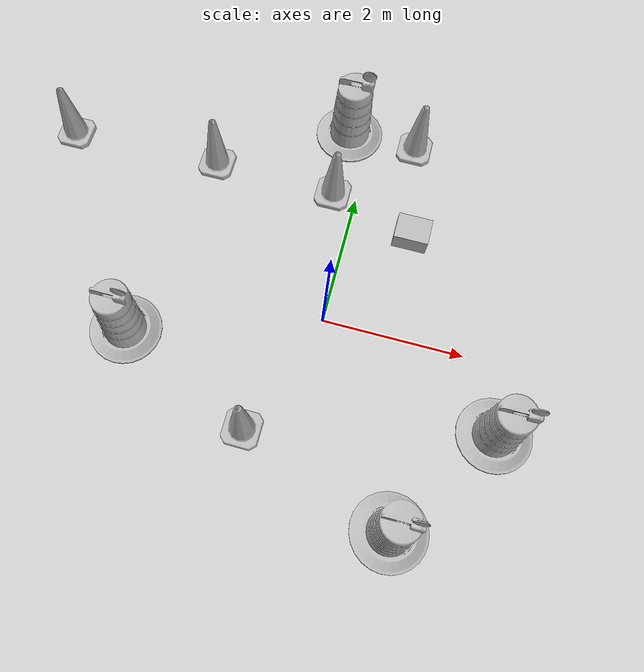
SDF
<sdf version="1.7">
 <world name="default">
  <light name="sun" type="directional">
   <pose>0 0 10 0 -0 0</pose>
   <diffuse>0.8 0.8 0.8 1</diffuse>
   <specular>0.2 0.2 0.2 1</specular>
   <attenuation>
    <range>1000</range>
    <constant>0.9</constant>
    <linear>0.01</linear>
    <quadratic>0.001</quadratic>
   </attenuation>
   <direction>-0.5 0.1 -0.9</direction>
   <spot><inner_angle>0</inner_angle><outer_angle>0</outer_angle><falloff>0</falloff></spot>
  </light>
  <model name="ground_plane">
   <static>1</static>
   <link name="link">
    <collision name="collision">
     <geometry><plane><normal>0 0 1</normal><size>100 100</size></plane></geometry>
     <surface>
      <contact><collide_bitmask>65535</collide_bitmask></contact>
      <friction><ode><mu>100</mu><mu2>50</mu2></ode></friction>
     </surface>
    </collision>
    <visual name="visual">
     <cast_shadows>0</cast_shadows>
     <geometry><plane><normal>0 0 1</normal><size>100 100</size></plane></geometry>
     <material>
      <script><uri>file://media/materials/scripts/gazebo.material</uri><name>Gazebo/Grey</name></script>
     </material>
    </visual>
   </link>
  </model>
  <gravity>0 0 -9.8</gravity>
  <magnetic_field>6e-06 2.3e-05 -4.2e-05</magnetic_field>
  <atmosphere type="adiabatic"/>
  <physics type="ode">
   <max_step_size>0.001</max_step_size>
   <real_time_factor>1</real_time_factor>
   <real_time_update_rate>1000</real_time_update_rate>
  </physics>
  <scene><ambient>0.4 0.4 0.4 1</ambient><background>0.7 0.7 0.7 1</background><shadows>1</shadows></scene>
  <audio><device>default</device></audio>
  <spherical_coordinates>
   <surface_model>EARTH_WGS84</surface_model>
   <latitude_deg>0</latitude_deg>
   <longitude_deg>0</longitude_deg>
   <elevation>0</elevation>
   <heading_deg>0</heading_deg>
  </spherical_coordinates>
  <model name="Construction Barrel">
   <link name="link">
    <inertial>
     <pose>0 0 0.4 0 -0 0</pose>
     <mass>500</mass>
     <inertia><ixx>51.2096</ixx><iyy>51.2096</iyy><izz>25</izz><ixy>0</ixy><ixz>0</ixz><iyz>0</iyz></inertia>
    </inertial>
    <collision name="collision">
     <geometry><mesh><uri>model://construction_barrel/meshes/construction_barrel.dae</uri></mesh></geometry>
    </collision>
    <visual name="visual">
     <geometry><mesh><uri>model://construction_barrel/meshes/construction_barrel.dae</uri></mesh></geometry>
    </visual>
   </link>
   <pose>1.51435 -2.55204 -1e-06 -1e-06 -0 -1.9e-05</pose>
  </model>
  <model name="Construction Barrel_0">
   <link name="link">
    <inertial>
     <pose>0 0 0.4 0 -0 0</pose>
     <mass>500</mass>
     <inertia><ixx>51.2096</ixx><iyy>51.2096</iyy><izz>25</izz><ixy>0</ixy><ixz>0</ixz><iyz>0</iyz></inertia>
    </inertial>
    <collision name="collision">
     <geometry><mesh><uri>model://construction_barrel/meshes/construction_barrel.dae</uri></mesh></geometry>
    </collision>
    <visual name="visual">
     <geometry><mesh><uri>model://construction_barrel/meshes/construction_barrel.dae</uri></mesh></geometry>
    </visual>
   </link>
   <pose>2.58983 -0.973853 -2e-06 4e-06 9e-06 -1.8e-05</pose>
  </model>
  <model name="Construction Cone">
   <link name="link">
    <collision name="collision">
     <geometry>
      <mesh><scale>10 10 10</scale><uri>model://construction_cone/meshes/construction_cone.dae</uri></mesh>
     </geometry>
    </collision>
    <visual name="visual">
     <geometry>
      <mesh><scale>10 10 10</scale><uri>model://construction_cone/meshes/construction_cone.dae</uri></mesh>
     </geometry>
    </visual>
    <inertial>
     <inertia><ixx>1</ixx><ixy>0</ixy><ixz>0</ixz><iyy>1</iyy><iyz>0</iyz><izz>1</izz></inertia>
     <mass>1</mass>
    </inertial>
   </link>
   <pose>-0.358393 2.02037 -0 0 -0 0</pose>
  </model>
  <model name="Construction Cone_0">
   <link name="link">
    <collision name="collision">
     <geometry>
      <mesh><scale>10 10 10</scale><uri>model://construction_cone/meshes/construction_cone.dae</uri></mesh>
     </geometry>
    </collision>
    <visual name="visual">
     <geometry>
      <mesh><scale>10 10 10</scale><uri>model://construction_cone/meshes/construction_cone.dae</uri></mesh>
     </geometry>
    </visual>
    <inertial>
     <inertia><ixx>1</ixx><ixy>0</ixy><ixz>0</ixz><iyy>1</iyy><iyz>0</iyz><izz>1</izz></inertia>
     <mass>1</mass>
    </inertial>
   </link>
   <pose>-2.1946 2.06843 -0 0 -0 0</pose>
  </model>
  <model name="Construction Barrel_1">
   <link name="link">
    <inertial>
     <pose>0 0 0.4 0 -0 0</pose>
     <mass>500</mass>
     <inertia><ixx>51.2096</ixx><iyy>51.2096</iyy><izz>25</izz><ixy>0</ixy><ixz>0</ixz><iyz>0</iyz></inertia>
    </inertial>
    <collision name="collision">
     <geometry><mesh><uri>model://construction_barrel/meshes/construction_barrel.dae</uri></mesh></geometry>
    </collision>
    <visual name="visual">
     <geometry><mesh><uri>model://construction_barrel/meshes/construction_barrel.dae</uri></mesh></geometry>
    </visual>
   </link>
   <pose>-2.62514 -0.861218 -1e-06 1e-06 -1e-06 -1.3e-05</pose>
  </model>
  <model name="cardboard_box">
   <pose>0.925264 1.61674 0.149 0 -0 0</pose>
   <link name="link">
    <inertial>
     <mass>2</mass>
     <inertia>
      <ixx>0.0416667</ixx>
      <ixy>0</ixy>
      <ixz>0</ixz>
      <iyy>0.0566667</iyy>
      <iyz>0</iyz>
      <izz>0.0683333</izz>
     </inertia>
    </inertial>
    <collision name="collision">
     <geometry><box><size>0.5 0.4 0.3</size></box></geometry>
     <surface>
      <friction><ode><mu>1</mu><mu2>1</mu2></ode></friction>
      <contact><ode><kp>1e+07</kp><kd>1</kd><min_depth>0.001</min_depth><max_vel>0.1</max_vel></ode></contact>
     </surface>
    </collision>
    <visual name="visual">
     <pose>0 0 -0.15 0 -0 0</pose>
     <geometry>
      <mesh><uri>model://cardboard_box/meshes/cardboard_box.dae</uri><scale>1.25932 1.00745 0.755591</scale></mesh>
     </geometry>
    </visual>
   </link>
  </model>
  <model name="Construction Barrel_2">
   <link name="link">
    <inertial>
     <pose>0 0 0.4 0 -0 0</pose>
     <mass>500</mass>
     <inertia><ixx>51.2096</ixx><iyy>51.2096</iyy><izz>25</izz><ixy>0</ixy><ixz>0</ixz><iyz>0</iyz></inertia>
    </inertial>
    <collision name="collision">
     <geometry><mesh><uri>model://construction_barrel/meshes/construction_barrel.dae</uri></mesh></geometry>
    </collision>
    <visual name="visual">
     <geometry><mesh><uri>model://construction_barrel/meshes/construction_barrel.dae</uri></mesh></geometry>
    </visual>
   </link>
   <pose>-0.368128 3.13832 -0 1e-06 -1e-06 -9e-06</pose>
  </model>
  <model name="Construction Cone_1">
   <link name="link">
    <collision name="collision">
     <geometry>
      <mesh><scale>10 10 10</scale><uri>model://construction_cone/meshes/construction_cone.dae</uri></mesh>
     </geometry>
    </collision>
    <visual name="visual">
     <geometry>
      <mesh><scale>10 10 10</scale><uri>model://construction_cone/meshes/construction_cone.dae</uri></mesh>
     </geometry>
    </visual>
    <inertial>
     <inertia><ixx>1</ixx><ixy>0</ixy><ixz>0</ixz><iyy>1</iyy><iyz>0</iyz><izz>1</izz></inertia>
     <mass>1</mass>
    </inertial>
   </link>
   <pose>0.670636 3.11693 -0 0 -0 0</pose>
  </model>
  <model name="Construction Cone_2">
   <link name="link">
    <collision name="collision">
     <geometry>
      <mesh><scale>10 10 10</scale><uri>model://construction_cone/meshes/construction_cone.dae</uri></mesh>
     </geometry>
    </collision>
    <visual name="visual">
     <geometry>
      <mesh><scale>10 10 10</scale><uri>model://construction_cone/meshes/construction_cone.dae</uri></mesh>
     </geometry>
    </visual>
    <inertial>
     <inertia><ixx>1</ixx><ixy>0</ixy><ixz>0</ixz><iyy>1</iyy><iyz>0</iyz><izz>1</izz></inertia>
     <mass>1</mass>
    </inertial>
   </link>
   <pose>-0.649714 -1.78439 -0 0 -0 0</pose>
  </model>
  <model name="Construction Cone_3">
   <link name="link">
    <collision name="collision">
     <geometry>
      <mesh><scale>10 10 10</scale><uri>model://construction_cone/meshes/construction_cone.dae</uri></mesh>
     </geometry>
    </collision>
    <visual name="visual">
     <geometry>
      <mesh><scale>10 10 10</scale><uri>model://construction_cone/meshes/construction_cone.dae</uri></mesh>
     </geometry>
    </visual>
    <inertial>
     <inertia><ixx>1</ixx><ixy>0</ixy><ixz>0</ixz><iyy>1</iyy><iyz>0</iyz><izz>1</izz></inertia>
     <mass>1</mass>
    </inertial>
   </link>
   <pose>-4.47605 2.01033 -0 0 -1e-06 0</pose>
  </model>
 </world>
</sdf>
